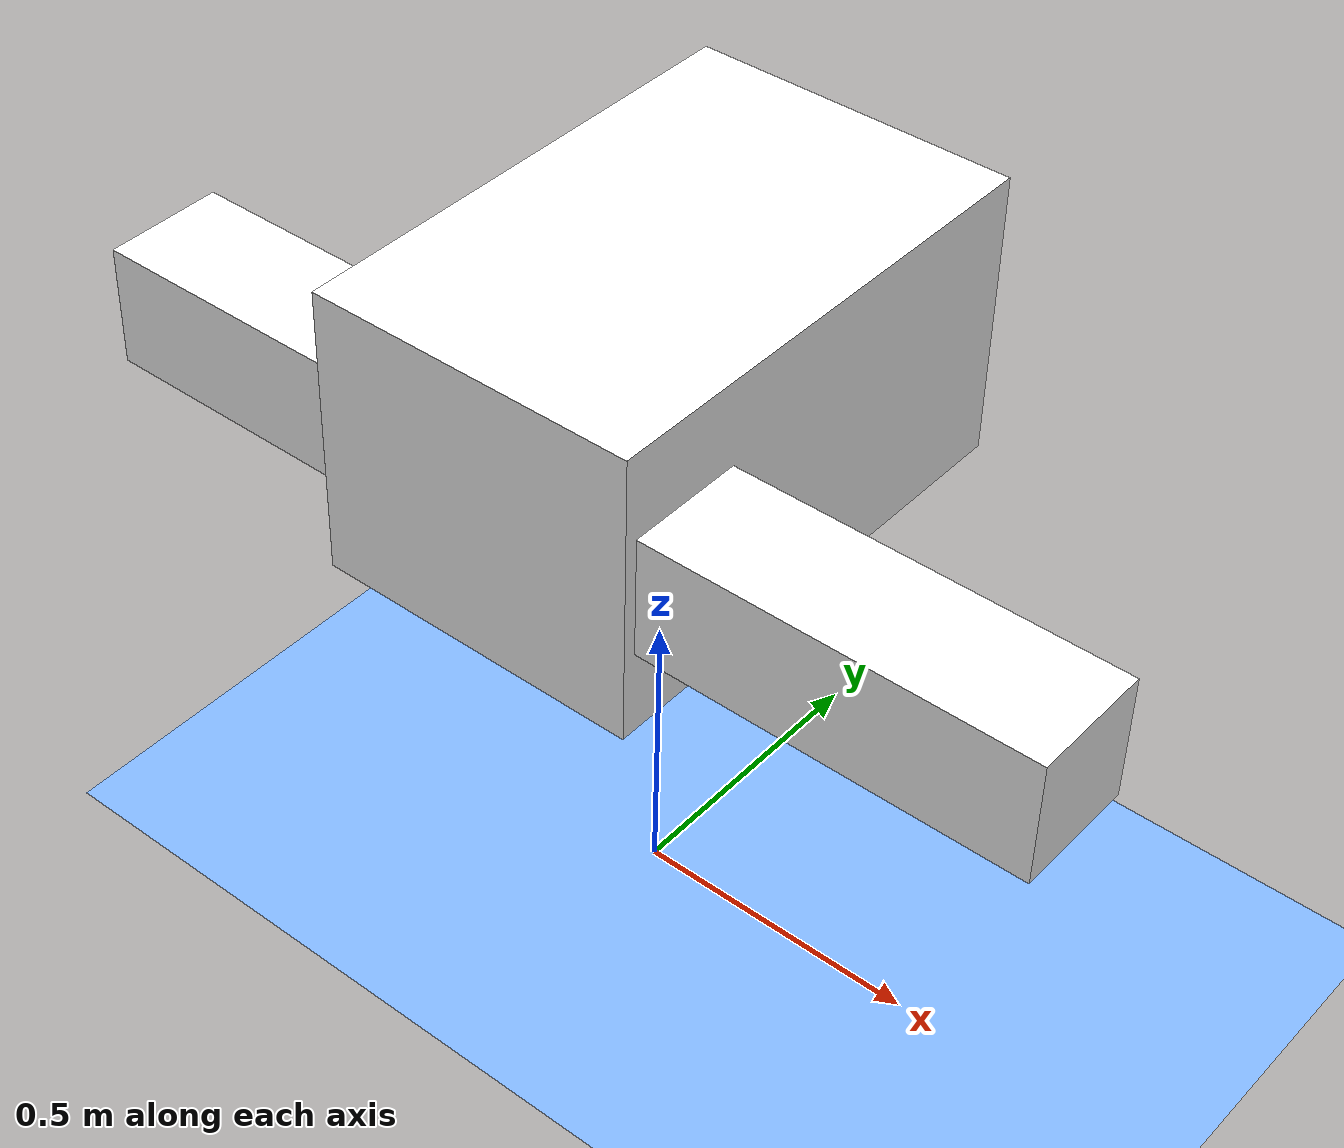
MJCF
<mujoco>
    <worldbody>
        <light diffuse=".5 .5 .5" pos="0 0 2" dir="0 -1 0" />
        <geom type="plane" size="10 10 0.1" rgba="0.5 0.7 1 1" />

        <body name="flappybird" pos="0 0 1" euler="0 0 0">
            <joint type="free" axis="0 0 0" pos="0 0 0" />
            <body name="body" pos="0 0 0" euler="0 0 0">
                <geom type="box" size="0.2760036309724546 0.42138049364763686 0.24275056158535327" rgba="1 1 1 1" mass="0.010656346489080959" />
            </body>

            <body name="wing1" pos=".5 -.3 0" euler="0 -90 0">
                <joint name="joint1" type="hinge" axis="0 1 0" pos="0 0 .25" range="-45 45" />
                <geom type="box" size="0.1 0.1 0.4020299398945306" rgba="1 1 1 1" mass="0.592271212190296" />
            </body>

            <body name="wing2" pos="-.5 -.3 0" euler="0 90 0">
                <joint name="joint2" type="hinge" axis="0 1 0" pos="0 0 .25" range="-45 45" />
                <geom type="box" size="0.1 0.1 0.2182684318914002" rgba="1 1 1 1" mass="0.4918423862194021" />
            </body>

        </body>
    </worldbody>

    <actuator>
        <motor joint="joint1" name="m1" gear="10.694140893563553" ctrllimited="true" ctrlrange="-5 5" />
        <motor joint="joint2" name="m2" gear="10.01996553289247" ctrllimited="true" ctrlrange="-5 5" />

</actuator>

</mujoco>
